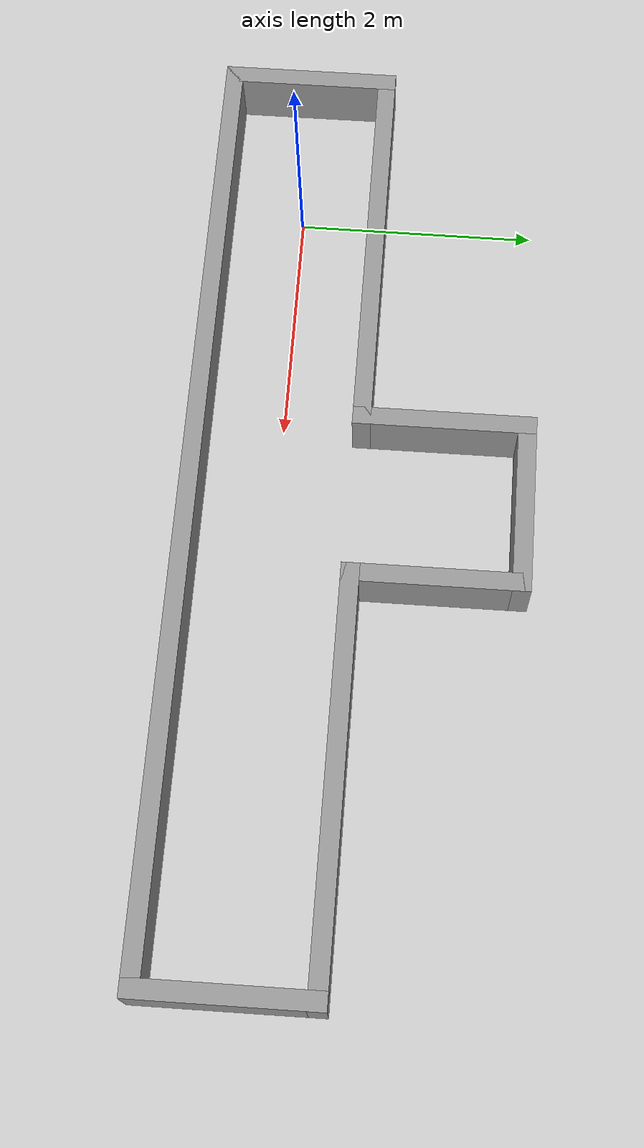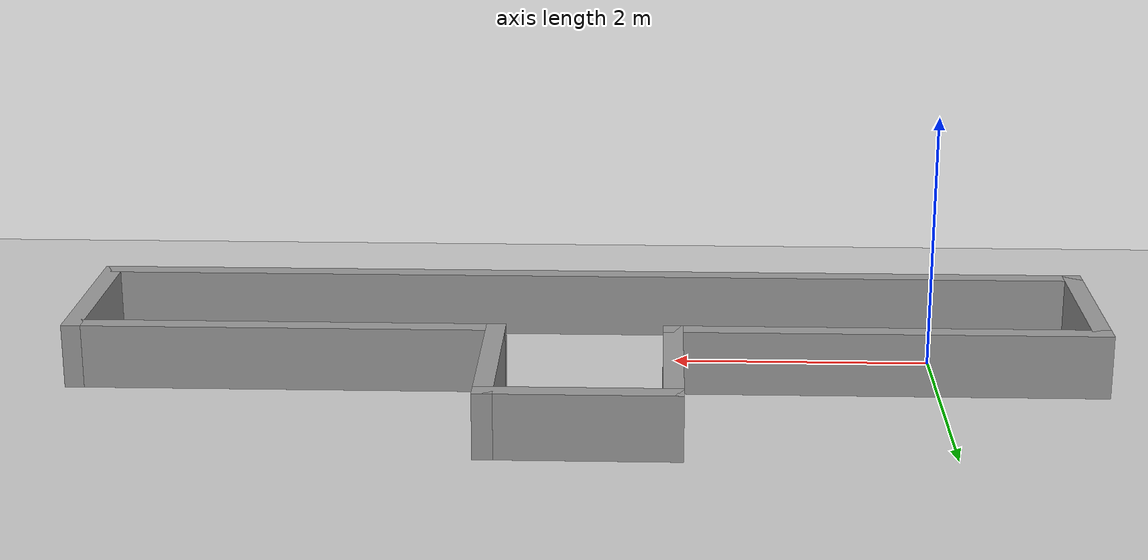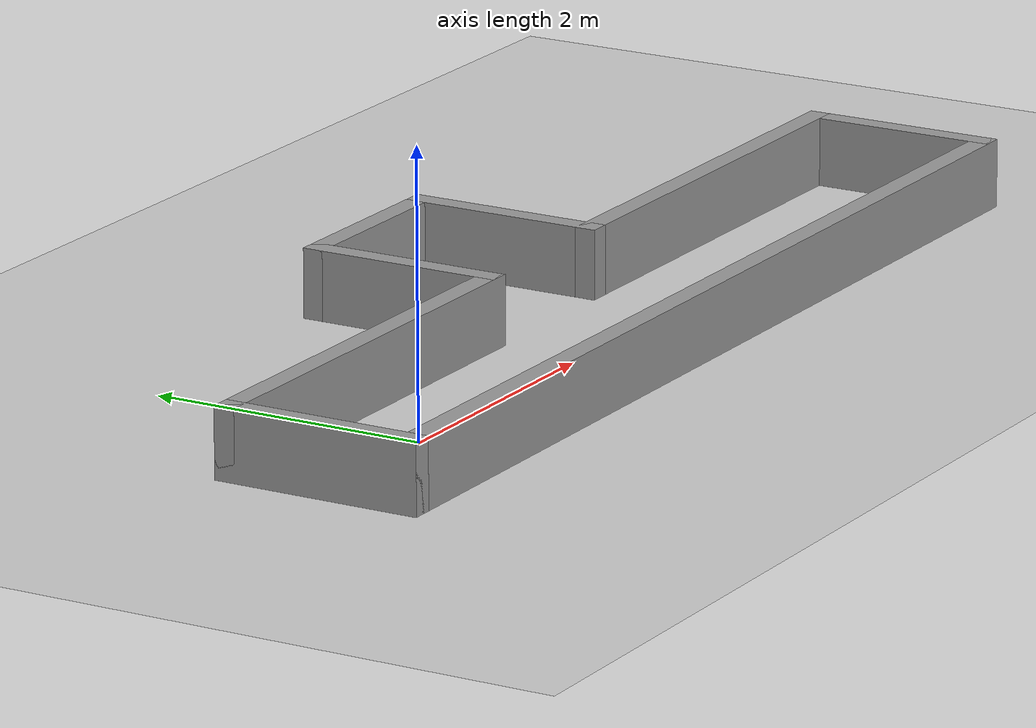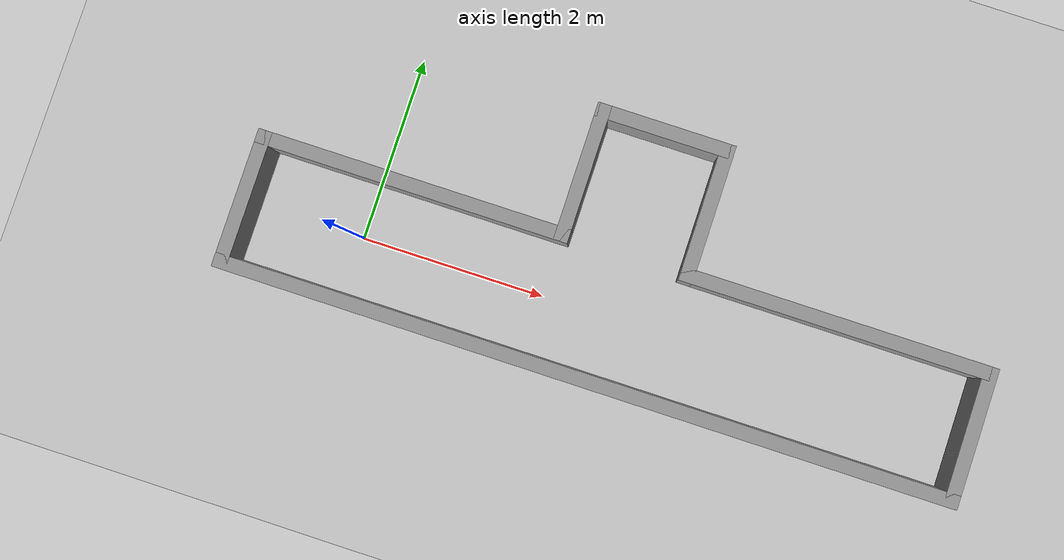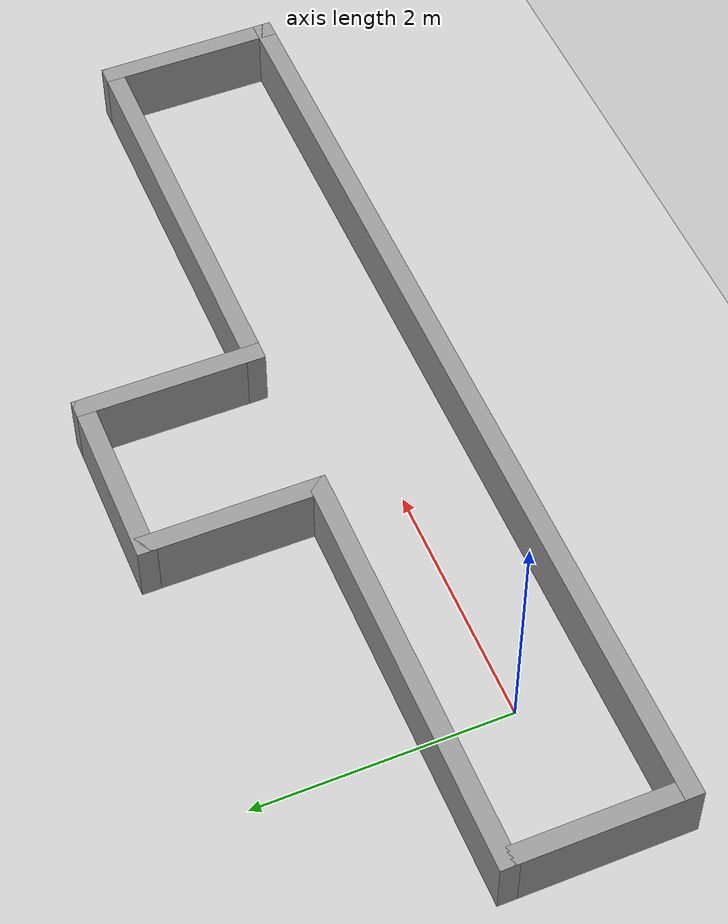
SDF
<sdf version="1.4">
 <world name="default">
  <scene><ambient>0.4 0.4 0.4 1</ambient><background>0.7 0.7 0.7 1</background><shadows>true</shadows></scene>
  <include><uri>model://sun</uri></include>
  <include><uri>model://ground_plane</uri></include>
  <physics type="ode">
   <real_time_update_rate>1000.0</real_time_update_rate>
   <max_step_size>0.001</max_step_size>
   <real_time_factor>1</real_time_factor>
   <ode>
    <solver>
     <type>quick</type>
     <iters>150</iters>
     <precon_iters>0</precon_iters>
     <sor>1.400000</sor>
     <use_dynamic_moi_rescaling>1</use_dynamic_moi_rescaling>
    </solver>
    <constraints>
     <cfm>0.00001</cfm>
     <erp>0.2</erp>
     <contact_max_correcting_vel>2000.000000</contact_max_correcting_vel>
     <contact_surface_layer>0.01000</contact_surface_layer>
    </constraints>
   </ode>
  </physics>
  <gravity>0 0 -9.8</gravity>
  <magnetic_field>6e-06 2.3e-05 -4.2e-05</magnetic_field>
  <atmosphere type="adiabatic"/>
  <physics name="default_physics" default="0" type="ode">
   <max_step_size>0.001</max_step_size>
   <real_time_factor>1</real_time_factor>
   <real_time_update_rate>1000</real_time_update_rate>
  </physics>
  <scene><ambient>0.4 0.4 0.4 1</ambient><background>0.7 0.7 0.7 1</background><shadows>1</shadows></scene>
  <audio><device>default</device></audio>
  <spherical_coordinates>
   <surface_model>EARTH_WGS84</surface_model>
   <latitude_deg>0</latitude_deg>
   <longitude_deg>0</longitude_deg>
   <elevation>0</elevation>
   <heading_deg>0</heading_deg>
  </spherical_coordinates>
  <model name="map">
   <pose>2.69863 0.658974 0 0 -0 0</pose>
   <link name="Wall_0">
    <collision name="Wall_0_Collision">
     <geometry><box><size>8 0.15 0.5</size></box></geometry>
     <pose>0 0 0.25 0 -0 0</pose>
    </collision>
    <visual name="Wall_0_Visual">
     <pose>0 0 0.25 0 -0 0</pose>
     <geometry><box><size>8 0.15 0.5</size></box></geometry>
     <material>
      <script><uri>file://media/materials/scripts/gazebo.material</uri><name>Gazebo/Grey</name></script>
      <ambient>1 1 1 1</ambient>
     </material>
     <meta><layer>0</layer></meta>
    </visual>
    <pose>0 -1.35 0 0 -0 5e-06</pose>
   </link>
   <link name="Wall_1">
    <collision name="Wall_1_Collision">
     <geometry><box><size>1.5 0.15 0.5</size></box></geometry>
     <pose>0 0 0.25 0 -0 0</pose>
    </collision>
    <visual name="Wall_1_Visual">
     <pose>0 0 0.25 0 -0 0</pose>
     <geometry><box><size>1.5 0.15 0.5</size></box></geometry>
     <material>
      <script><uri>file://media/materials/scripts/gazebo.material</uri><name>Gazebo/Grey</name></script>
      <ambient>1 1 1 1</ambient>
     </material>
     <meta><layer>0</layer></meta>
    </visual>
    <pose>3.925 -0.674978 0 0 -0 1.5708</pose>
   </link>
   <link name="Wall_2">
    <collision name="Wall_2_Collision">
     <geometry><box><size>3.4 0.15 0.5</size></box></geometry>
     <pose>0 0 0.25 0 -0 0</pose>
    </collision>
    <visual name="Wall_2_Visual">
     <pose>0 0 0.25 0 -0 0</pose>
     <geometry><box><size>3.4 0.15 0.5</size></box></geometry>
     <material>
      <script><uri>file://media/materials/scripts/gazebo.material</uri><name>Gazebo/Grey</name></script>
      <ambient>1 1 1 1</ambient>
     </material>
     <meta><layer>0</layer></meta>
    </visual>
    <pose>2.3 2.2e-05 0 0 -0 3.14159</pose>
   </link>
   <link name="Wall_4">
    <collision name="Wall_4_Collision">
     <geometry><box><size>1.5 0.15 0.5</size></box></geometry>
     <pose>0 0 0.25 0 -0 0</pose>
    </collision>
    <visual name="Wall_4_Visual">
     <pose>0 0 0.25 0 -0 0</pose>
     <geometry><box><size>1.5 0.15 0.5</size></box></geometry>
     <material>
      <script><uri>file://media/materials/scripts/gazebo.material</uri><name>Gazebo/Grey</name></script>
      <ambient>1 1 1 1</ambient>
     </material>
     <meta><layer>0</layer></meta>
    </visual>
    <pose>0.675 0.675021 0 0 -0 1.5708</pose>
   </link>
   <link name="Wall_5">
    <collision name="Wall_5_Collision">
     <geometry><box><size>1.5 0.15 0.5</size></box></geometry>
     <pose>0 0 0.25 0 -0 0</pose>
    </collision>
    <visual name="Wall_5_Visual">
     <pose>0 0 0.25 0 -0 0</pose>
     <geometry><box><size>1.5 0.15 0.5</size></box></geometry>
     <material>
      <script><uri>file://media/materials/scripts/gazebo.material</uri><name>Gazebo/Grey</name></script>
      <ambient>1 1 1 1</ambient>
     </material>
     <meta><layer>0</layer></meta>
    </visual>
    <pose>0 1.35002 0 0 -0 3.14159</pose>
   </link>
   <link name="Wall_6">
    <collision name="Wall_6_Collision">
     <geometry><box><size>1.5 0.15 0.5</size></box></geometry>
     <pose>0 0 0.25 0 -0 0</pose>
    </collision>
    <visual name="Wall_6_Visual">
     <pose>0 0 0.25 0 -0 0</pose>
     <geometry><box><size>1.5 0.15 0.5</size></box></geometry>
     <material>
      <script><uri>file://media/materials/scripts/gazebo.material</uri><name>Gazebo/Grey</name></script>
      <ambient>1 1 1 1</ambient>
     </material>
     <meta><layer>0</layer></meta>
    </visual>
    <pose>-0.675 0.675021 0 0 -0 -1.5708</pose>
   </link>
   <link name="Wall_7">
    <collision name="Wall_7_Collision">
     <geometry><box><size>3.4 0.15 0.5</size></box></geometry>
     <pose>0 0 0.25 0 -0 0</pose>
    </collision>
    <visual name="Wall_7_Visual">
     <pose>0 0 0.25 0 -0 0</pose>
     <geometry><box><size>3.4 0.15 0.5</size></box></geometry>
     <material>
      <script><uri>file://media/materials/scripts/gazebo.material</uri><name>Gazebo/Grey</name></script>
      <ambient>1 1 1 1</ambient>
     </material>
     <meta><layer>0</layer></meta>
    </visual>
    <pose>-2.3 2.2e-05 0 0 -0 3.14159</pose>
   </link>
   <link name="Wall_9">
    <collision name="Wall_9_Collision">
     <geometry><box><size>1.50004 0.15 0.5</size></box></geometry>
     <pose>0 0 0.25 0 -0 0</pose>
    </collision>
    <visual name="Wall_9_Visual">
     <pose>0 0 0.25 0 -0 0</pose>
     <geometry><box><size>1.50004 0.15 0.5</size></box></geometry>
     <material>
      <script><uri>file://media/materials/scripts/gazebo.material</uri><name>Gazebo/Grey</name></script>
      <ambient>1 1 1 1</ambient>
     </material>
     <meta><layer>0</layer></meta>
    </visual>
    <pose>-3.925 -0.675 0 0 -0 -1.5708</pose>
   </link>
   <static>1</static>
  </model>
 </world>
</sdf>
